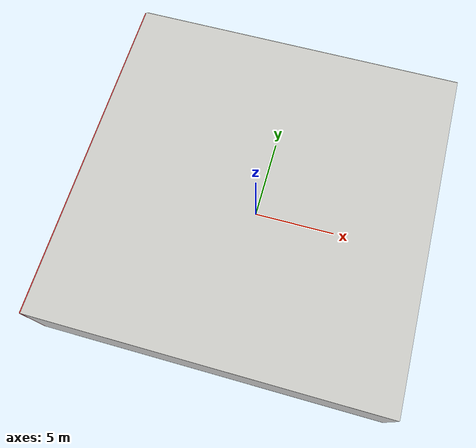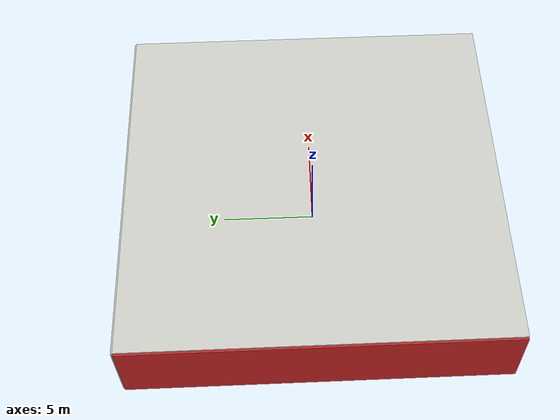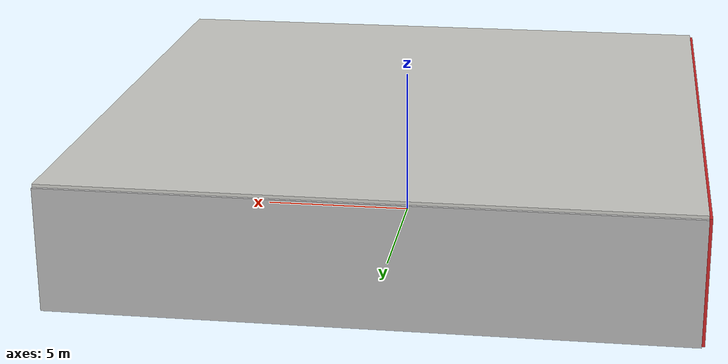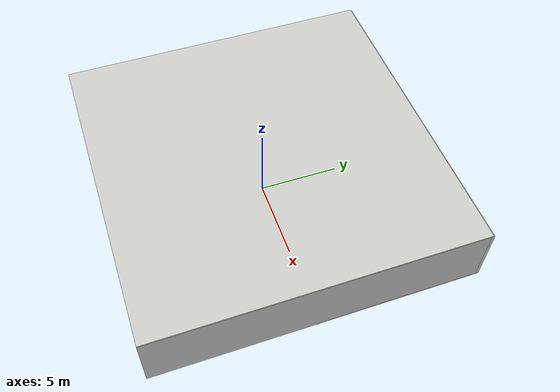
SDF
<sdf version="1.4">
 <world name="default">
  <physics type="ode">
   <max_step_size>0.001</max_step_size>
   <real_time_factor>1</real_time_factor>
   <real_time_update_rate>1000</real_time_update_rate>
   <gravity>0 0 -9.8</gravity>
  </physics>
  <scene><ambient>0.4 0.4 0.4 1</ambient><background>0.7 0.7 0.7 1</background><shadows>1</shadows></scene>
  <model name="Surrounding">
   <static>1</static>
   <link name="Ceiling">
    <collision name="Ceiling_Collision"><geometry><box><size>20 20 0.1</size></box></geometry></collision>
    <visual name="Ceiling_Visual">
     <geometry><box><size>20 20 0.1</size></box></geometry>
     <material>
      <script><uri>file://media/materials/scripts/gazebo.material</uri><name>Gazebo/CeilingTiled</name></script>
     </material>
    </visual>
    <pose>0 0 4.05 0 0 0</pose>
   </link>
   <link name="Wall_South">
    <collision name="Wall_South_Collision">
     <geometry><box><size>20 0 4</size></box></geometry>
     <pose>0 0 2 0 -0 0</pose>
    </collision>
    <visual name="Wall_South_Visual">
     <pose>0 0 2 0 -0 0</pose>
     <geometry><box><size>20 0 4</size></box></geometry>
     <material>
      <script><uri>file://media/materials/scripts/gazebo.material</uri><name>Gazebo/WhiteGlow</name></script>
     </material>
    </visual>
    <velocity_decay><linear>0</linear><angular>0</angular></velocity_decay>
    <pose>0 -10 0 0 -0 0</pose>
   </link>
   <link name="Wall_East">
    <collision name="Wall_21_Collision">
     <geometry><box><size>20 0 4</size></box></geometry>
     <pose>0 0 2 0 -0 0</pose>
    </collision>
    <visual name="Wall_21_Visual">
     <pose>0 0 2 0 -0 0</pose>
     <geometry><box><size>20 0 4</size></box></geometry>
     <material>
      <script><uri>file://media/materials/scripts/gazebo.material</uri><name>Gazebo/PioneerBody</name></script>
     </material>
    </visual>
    <velocity_decay><linear>0</linear><angular>0</angular></velocity_decay>
    <pose>10 0 0 0 -0 1.5708</pose>
   </link>
   <link name="Wall_North">
    <collision name="Wall_22_Collision">
     <geometry><box><size>20 0.2 4</size></box></geometry>
     <pose>0 0 2 0 -0 0</pose>
    </collision>
    <visual name="Wall_22_Visual">
     <pose>0 0 2 0 -0 0</pose>
     <geometry><box><size>20 0.2 4</size></box></geometry>
     <material>
      <script><uri>file://media/materials/scripts/gazebo.material</uri><name>Gazebo/Pioneer2Body</name></script>
     </material>
    </visual>
    <velocity_decay><linear>0</linear><angular>0</angular></velocity_decay>
    <pose>0 10 0 0 -0 0</pose>
   </link>
   <link name="Wall_West">
    <collision name="Wall_23_Collision">
     <geometry><box><size>20 0.2 4</size></box></geometry>
     <pose>0 0 2 0 -0 0</pose>
    </collision>
    <visual name="Wall_23_Visual">
     <pose>0 0 2 0 -0 0</pose>
     <geometry><box><size>20 0.2 4</size></box></geometry>
     <material>
      <script><uri>file://media/materials/scripts/gazebo.material</uri><name>Gazebo/Red</name></script>
     </material>
    </visual>
    <velocity_decay><linear>0</linear><angular>0</angular></velocity_decay>
    <pose>-10 0 0 0 0 -1.5708</pose>
   </link>
   <link name="Ground_link">
    <collision name="collision">
     <pose>0 0 .05 0 -0 0</pose>
     <geometry><box><size>20 20 0.1</size></box></geometry>
    </collision>
    <visual name="visual">
     <pose>0 0 .05 0 -0 0</pose>
     <geometry><box><size>20 20 0.1</size></box></geometry>
     <material>
      <script><uri>file://media/materials/scripts/gazebo.material</uri><name>Gazebo/LightOff</name></script>
     </material>
    </visual>
   </link>
   <static>1</static>
  </model>
  <spherical_coordinates>
   <surface_model>EARTH_WGS84</surface_model>
   <latitude_deg>0</latitude_deg>
   <longitude_deg>0</longitude_deg>
   <elevation>0</elevation>
   <heading_deg>0</heading_deg>
  </spherical_coordinates>
  <light name="lightball_0" type="diffuse">
   <diffuse>0.8 0.8 0.8 1</diffuse>
   <specular>0.2 0.2 0.2 1</specular>
   <attenuation>
    <range>100</range>
    <constant>0.7</constant>
    <linear>0.01</linear>
    <quadratic>0.001</quadratic>
   </attenuation>
   <direction>-0.5 0.1 -0.9</direction>
   <pose>3.79534246235 7.12841829885 3.07979183837 0 0 0</pose>
  </light>
  <light name="lightball_1" type="diffuse">
   <diffuse>0.8 0.8 0.8 1</diffuse>
   <specular>0.2 0.2 0.2 1</specular>
   <attenuation>
    <range>100</range>
    <constant>0.7</constant>
    <linear>0.01</linear>
    <quadratic>0.001</quadratic>
   </attenuation>
   <direction>-0.5 0.1 -0.9</direction>
   <pose>-0.313012793284 -7.84988633065 1.3256471599 0 0 0</pose>
  </light>
  <light name="lightball_2" type="diffuse">
   <diffuse>0.8 0.8 0.8 1</diffuse>
   <specular>0.2 0.2 0.2 1</specular>
   <attenuation>
    <range>100</range>
    <constant>0.7</constant>
    <linear>0.01</linear>
    <quadratic>0.001</quadratic>
   </attenuation>
   <direction>-0.5 0.1 -0.9</direction>
   <pose>-0.194451800454 2.30623625781 3.02076780054 0 0 0</pose>
  </light>
  <light name="lightball_3" type="diffuse">
   <diffuse>0.8 0.8 0.8 1</diffuse>
   <specular>0.2 0.2 0.2 1</specular>
   <attenuation>
    <range>100</range>
    <constant>0.7</constant>
    <linear>0.01</linear>
    <quadratic>0.001</quadratic>
   </attenuation>
   <direction>-0.5 0.1 -0.9</direction>
   <pose>-2.77328763813 -4.32361172041 1.99833938017 0 0 0</pose>
  </light>
  <light name="lightball_4" type="diffuse">
   <diffuse>0.8 0.8 0.8 1</diffuse>
   <specular>0.2 0.2 0.2 1</specular>
   <attenuation>
    <range>100</range>
    <constant>0.7</constant>
    <linear>0.01</linear>
    <quadratic>0.001</quadratic>
   </attenuation>
   <direction>-0.5 0.1 -0.9</direction>
   <pose>0.955865478081 4.38757567828 2.09691887902 0 0 0</pose>
  </light>
  <light name="lightball_5" type="diffuse">
   <diffuse>0.8 0.8 0.8 1</diffuse>
   <specular>0.2 0.2 0.2 1</specular>
   <attenuation>
    <range>100</range>
    <constant>0.7</constant>
    <linear>0.01</linear>
    <quadratic>0.001</quadratic>
   </attenuation>
   <direction>-0.5 0.1 -0.9</direction>
   <pose>5.39840632856 -2.72650376374 3.72513568427 0 0 0</pose>
  </light>
  <light name="lightball_6" type="diffuse">
   <diffuse>0.8 0.8 0.8 1</diffuse>
   <specular>0.2 0.2 0.2 1</specular>
   <attenuation>
    <range>100</range>
    <constant>0.7</constant>
    <linear>0.01</linear>
    <quadratic>0.001</quadratic>
   </attenuation>
   <direction>-0.5 0.1 -0.9</direction>
   <pose>5.60049181593 9.74737115445 3.74545245827 0 0 0</pose>
  </light>
  <light name="lightball_7" type="diffuse">
   <diffuse>0.8 0.8 0.8 1</diffuse>
   <specular>0.2 0.2 0.2 1</specular>
   <attenuation>
    <range>100</range>
    <constant>0.7</constant>
    <linear>0.01</linear>
    <quadratic>0.001</quadratic>
   </attenuation>
   <direction>-0.5 0.1 -0.9</direction>
   <pose>8.59866496626 0.978713871143 2.45026530021 0 0 0</pose>
  </light>
  <light name="lightball_8" type="diffuse">
   <diffuse>0.8 0.8 0.8 1</diffuse>
   <specular>0.2 0.2 0.2 1</specular>
   <attenuation>
    <range>100</range>
    <constant>0.7</constant>
    <linear>0.01</linear>
    <quadratic>0.001</quadratic>
   </attenuation>
   <direction>-0.5 0.1 -0.9</direction>
   <pose>1.17793628671 -9.52599326352 1.7404253782 0 0 0</pose>
  </light>
  <light name="lightball_9" type="diffuse">
   <diffuse>0.8 0.8 0.8 1</diffuse>
   <specular>0.2 0.2 0.2 1</specular>
   <attenuation>
    <range>100</range>
    <constant>0.7</constant>
    <linear>0.01</linear>
    <quadratic>0.001</quadratic>
   </attenuation>
   <direction>-0.5 0.1 -0.9</direction>
   <pose>-8.32167815683 -2.95675156935 2.65125071003 0 0 0</pose>
  </light>
  <light name="lightball_10" type="diffuse">
   <diffuse>0.8 0.8 0.8 1</diffuse>
   <specular>0.2 0.2 0.2 1</specular>
   <attenuation>
    <range>100</range>
    <constant>0.7</constant>
    <linear>0.01</linear>
    <quadratic>0.001</quadratic>
   </attenuation>
   <direction>-0.5 0.1 -0.9</direction>
   <pose>-7.71706675902 -0.662863948459 0.508399059371 0 0 0</pose>
  </light>
  <light name="lightball_11" type="diffuse">
   <diffuse>0.8 0.8 0.8 1</diffuse>
   <specular>0.2 0.2 0.2 1</specular>
   <attenuation>
    <range>100</range>
    <constant>0.7</constant>
    <linear>0.01</linear>
    <quadratic>0.001</quadratic>
   </attenuation>
   <direction>-0.5 0.1 -0.9</direction>
   <pose>0.202023500942 2.54465113614 2.08280108656 0 0 0</pose>
  </light>
  <light name="lightball_12" type="diffuse">
   <diffuse>0.8 0.8 0.8 1</diffuse>
   <specular>0.2 0.2 0.2 1</specular>
   <attenuation>
    <range>100</range>
    <constant>0.7</constant>
    <linear>0.01</linear>
    <quadratic>0.001</quadratic>
   </attenuation>
   <direction>-0.5 0.1 -0.9</direction>
   <pose>-0.164086868092 6.10470244203 2.36934735614 0 0 0</pose>
  </light>
  <include>
   <uri>model://textured_shapes</uri>
   <pose>-8.20144916667 -1.8942531883 0 0 0 2.46007941602</pose>
  </include>
  <include><uri>model://cabinet</uri><pose>-7.82242246665 1.81802129055 0 0 0 2.1129094795</pose></include>
  <include>
   <uri>model://construction_cone</uri>
   <pose>-6.72074645859 6.96475442154 0 0 0 1.00575136637</pose>
  </include>
  <include><uri>model://table</uri><pose>3.86810812434 7.59885413912 0 0 0 1.89407121485</pose></include>
 </world>
</sdf>

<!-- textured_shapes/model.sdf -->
<sdf version="1.6">
  <model name="textured_shapes">
    <pose>0 0 0.5 0 0 0</pose>
    <link name="box">
      <pose>0 -1.5 0 0 0 0</pose>
      <collision name="collision">
        <geometry>
          <box>
            <size>1 1 1</size>
          </box>
        </geometry>
      </collision>
      <visual name="visual">
        <geometry>
          <box>
            <size>1 1 1</size>
          </box>
        </geometry>
        <material>
          <script>
            <uri>model://../model_source/models/textured_shapes/materials/scripts</uri>
            <uri>model://../model_source/models/textured_shapes/materials/textures</uri>
            <name>TexturedShape/Squares</name>
          </script>
        </material>
      </visual>
    </link>
    <link name="sphere">
      <collision name="collision">
        <geometry>
          <sphere>
            <radius>0.5</radius>
          </sphere>
        </geometry>
      </collision>
      <visual name="visual">
        <geometry>
          <sphere>
            <radius>0.5</radius>
          </sphere>
        </geometry>
        <material>
          <script>
            <uri>model://../model_source/models/textured_shapes/materials/scripts</uri>
            <uri>model://../model_source/models/textured_shapes/materials/textures</uri>
            <name>TexturedShape/Squares</name>
          </script>
        </material>
      </visual>
    </link>
    <link name="cylinder">
      <pose>0 1.5 0 0 0 0</pose>
      <collision name="collision">
        <geometry>
          <cylinder>
            <radius>0.5</radius>
            <length>1</length>
          </cylinder>
        </geometry>
      </collision>
      <visual name="visual">
        <geometry>
          <cylinder>
            <radius>0.5</radius>
            <length>1</length>
          </cylinder>
        </geometry>
        <material>
          <script>
            <uri>model://../model_source/models/textured_shapes/materials/scripts</uri>
            <uri>model://../model_source/models/textured_shapes/materials/textures</uri>
            <name>TexturedShape/Squares</name>
          </script>
        </material>
      </visual>
    </link>
  </model>
</sdf>

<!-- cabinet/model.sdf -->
<sdf version="1.5">
  <model name="cabinet">
    <static>true</static>
    <link name="cabinet_bottom_plate">
      <inertial>
        <pose>0 0 -1 0 0 0</pose>
        <inertia>
          <ixx>2.050000</ixx>
          <ixy>0</ixy>
          <ixz>0</ixz>
          <iyy>2.050000</iyy>
          <iyz>0</iyz>
          <izz>2.050000</izz>
        </inertia>
        <mass>25.000000</mass>
      </inertial>
      <collision name="cabinet_bottom_plate_geom">
        <pose>0 0 0.010000 0 0 0</pose>
        <geometry>
          <box>
            <size>0.450000 0.450000 0.020000</size>
          </box>
        </geometry>
      </collision>
      <visual name="cabinet_bottom_plate_geom_visual">
        <pose>0 0 0.010000 0 0 0</pose>
        <geometry>
          <box>
            <size>0.450000 0.450000 0.020000</size>
          </box>
        </geometry>
        <material>
          <script>
            <uri>model://media/materials/scripts/gazebo.material</uri>
            <name>Gazebo/Wood</name>
          </script>
        </material>
      </visual>
      <collision name="cabinet_bottom_plate_geom_cabinet_back_plate">
        <pose>0.235000 0 0.510000 0 0 0</pose>
        <geometry>
          <box>
            <size>0.020000 0.450000 1.020000</size>
          </box>
        </geometry>
      </collision>
      <visual name="cabinet_bottom_plate_geom_cabinet_back_plate_visual">
        <pose>0.235000 0 0.510000 0 0 0</pose>
        <geometry>
          <box>
            <size>0.020000 0.450000 1.020000</size>
          </box>
        </geometry>
        <material>
          <script>
            <uri>model://media/materials/scripts/gazebo.material</uri>
            <name>Gazebo/Wood</name>
          </script>
        </material>
      </visual>
      <collision name="cabinet_bottom_plate_geom_cabinet_left_plate">
        <pose>0 0.235000 0.510000 0 0 0</pose>
        <geometry>
          <box>
            <size>0.450000 0.020000 1.020000</size>
          </box>
        </geometry>
      </collision>
      <visual name="cabinet_bottom_plate_geom_cabinet_left_plate_visual">
        <pose>0 0.235000 0.510000 0 0 0</pose>
        <geometry>
          <box>
            <size>0.450000 0.020000 1.020000</size>
          </box>
        </geometry>
        <material>
          <script>
            <uri>model://media/materials/scripts/gazebo.material</uri>
            <name>Gazebo/Wood</name>
          </script>
        </material>
      </visual>
      <collision name="cabinet_bottom_plate_geom_cabinet_middle_plate">
        <pose>0 0 0.510000 0 0 0</pose>
        <geometry>
          <box>
            <size>0.450000 0.450000 0.020000</size>
          </box>
        </geometry>
      </collision>
      <visual name="cabinet_bottom_plate_geom_cabinet_middle_plate_visual">
        <pose>0 0 0.510000 0 0 0</pose>
        <geometry>
          <box>
            <size>0.450000 0.450000 0.020000</size>
          </box>
        </geometry>
        <material>
          <script>
            <uri>model://media/materials/scripts/gazebo.material</uri>
            <name>Gazebo/Wood</name>
          </script>
        </material>
      </visual>
      <collision name="cabinet_bottom_plate_geom_cabinet_right_plate">
        <pose>0 -0.235000 0.510000 0 0 0</pose>
        <geometry>
          <box>
            <size>0.450000 0.020000 1.020000</size>
          </box>
        </geometry>
      </collision>
      <visual name="cabinet_bottom_plate_geom_cabinet_right_plate_visual">
        <pose>0 -0.235000 0.510000 0 0 0</pose>
        <geometry>
          <box>
            <size>0.450000 0.020000 1.020000</size>
          </box>
        </geometry>
        <material>
          <script>
            <uri>model://media/materials/scripts/gazebo.material</uri>
            <name>Gazebo/Wood</name>
          </script>
        </material>
      </visual>
      <collision name="cabinet_bottom_plate_geom_cabinet_top_plate">
        <pose>0 0 1.010000 0 0 0</pose>
        <geometry>
          <box>
            <size>0.450000 0.450000 0.020000</size>
          </box>
        </geometry>
      </collision>
      <visual name="cabinet_bottom_plate_geom_cabinet_top_plate_visual">
        <pose>0 0 1.010000 0 0 0</pose>
        <geometry>
          <box>
            <size>0.450000 0.450000 0.020000</size>
          </box>
        </geometry>
        <material>
          <script>
            <uri>model://media/materials/scripts/gazebo.material</uri>
            <name>Gazebo/Wood</name>
          </script>
        </material>
      </visual>
    </link>
  </model>
</sdf>

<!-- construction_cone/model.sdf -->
<sdf version="1.5">
  <model name="Construction Cone">
    <link name="link">
      <collision name="collision">
        <geometry>
          <mesh>
            <scale>10 10 10</scale>
            <uri>file://isr-testbed/construction_cone/meshes/construction_cone.dae</uri>
          </mesh>
        </geometry>
      </collision>
      <visual name="visual">
        <geometry>
          <mesh>
            <scale>10 10 10</scale>
            <uri>file://isr-testbed/construction_cone/meshes/construction_cone.dae</uri>
          </mesh>
        </geometry>
      </visual>
    </link>
  </model>
</sdf>

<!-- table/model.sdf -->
<sdf version="1.5">
  <model name="table">
    <static>true</static>
    <link name="link">
      <collision name="surface">
        <pose>0 0 1.0 0 0 0</pose>
        <geometry>
          <box>
            <size>1.5 0.8 0.03</size>
          </box>
        </geometry>
        <surface>
          <friction>
            <ode>
              <mu>0.6</mu>
              <mu2>0.6</mu2>
            </ode>
          </friction>
        </surface>
      </collision>
      <visual name="visual1">
        <pose>0 0 1.0 0 0 0</pose>
        <geometry>
          <box>
            <size>1.5 0.8 0.03</size>
          </box>
        </geometry>
        <material>
          <script>
            <uri>model://media/materials/scripts/gazebo.material</uri>
            <name>Gazebo/Wood</name>
          </script>
        </material>
      </visual>
      <collision name="front_left_leg">
        <pose>0.68 0.38 0.5 0 0 0</pose>
        <geometry>
          <cylinder>
            <radius>0.02</radius>
            <length>1.0</length>
          </cylinder>
        </geometry>
      </collision>
      <visual name="front_left_leg">
        <pose>0.68 0.38 0.5 0 0 0</pose>
        <geometry>
          <cylinder>
            <radius>0.02</radius>
            <length>1.0</length>
          </cylinder>
        </geometry>
        <material>
          <script>
            <uri>model://media/materials/scripts/gazebo.material</uri>
            <name>Gazebo/Grey</name>
          </script>
        </material>
      </visual>
      <collision name="front_right_leg">
        <pose>0.68 -0.38 0.5 0 0 0</pose>
        <geometry>
          <cylinder>
            <radius>0.02</radius>
            <length>1.0</length>
          </cylinder>
        </geometry>
      </collision>
      <visual name="front_right_leg">
        <pose>0.68 -0.38 0.5 0 0 0</pose>
        <geometry>
          <cylinder>
            <radius>0.02</radius>
            <length>1.0</length>
          </cylinder>
        </geometry>
        <material>
          <script>
            <uri>model://media/materials/scripts/gazebo.material</uri>
            <name>Gazebo/Grey</name>
          </script>
        </material>
      </visual>
      <collision name="back_right_leg">
        <pose>-0.68 -0.38 0.5 0 0 0</pose>
        <geometry>
          <cylinder>
            <radius>0.02</radius>
            <length>1.0</length>
          </cylinder>
        </geometry>
      </collision>
      <visual name="back_right_leg">
        <pose>-0.68 -0.38 0.5 0 0 0</pose>
        <geometry>
          <cylinder>
            <radius>0.02</radius>
            <length>1.0</length>
          </cylinder>
        </geometry>
        <material>
          <script>
            <uri>model://media/materials/scripts/gazebo.material</uri>
            <name>Gazebo/Grey</name>
          </script>
        </material>
      </visual>
      <collision name="back_left_leg">
        <pose>-0.68 0.38 0.5 0 0 0</pose>
        <geometry>
          <cylinder>
            <radius>0.02</radius>
            <length>1.0</length>
          </cylinder>
        </geometry>
      </collision>
      <visual name="back_left_leg">
        <pose>-0.68 0.38 0.5 0 0 0</pose>
        <geometry>
          <cylinder>
            <radius>0.02</radius>
            <length>1.0</length>
          </cylinder>
        </geometry>
        <material>
          <script>
            <uri>model://media/materials/scripts/gazebo.material</uri>
            <name>Gazebo/Grey</name>
          </script>
        </material>
      </visual>
    </link>
  </model>
</sdf>
